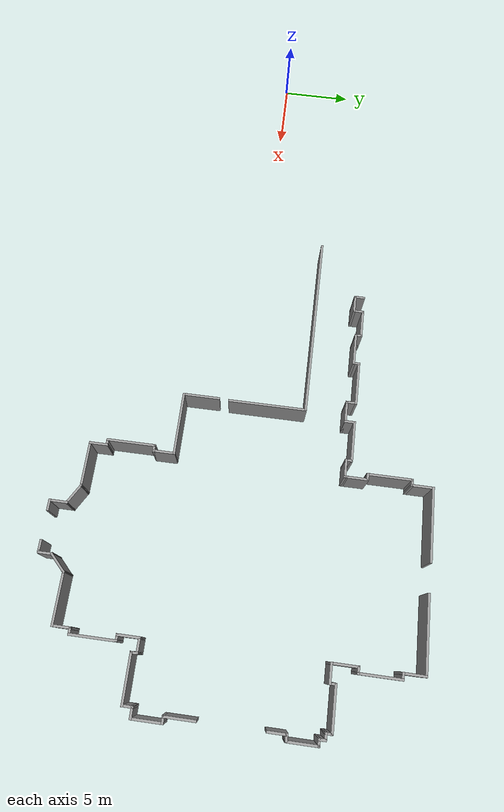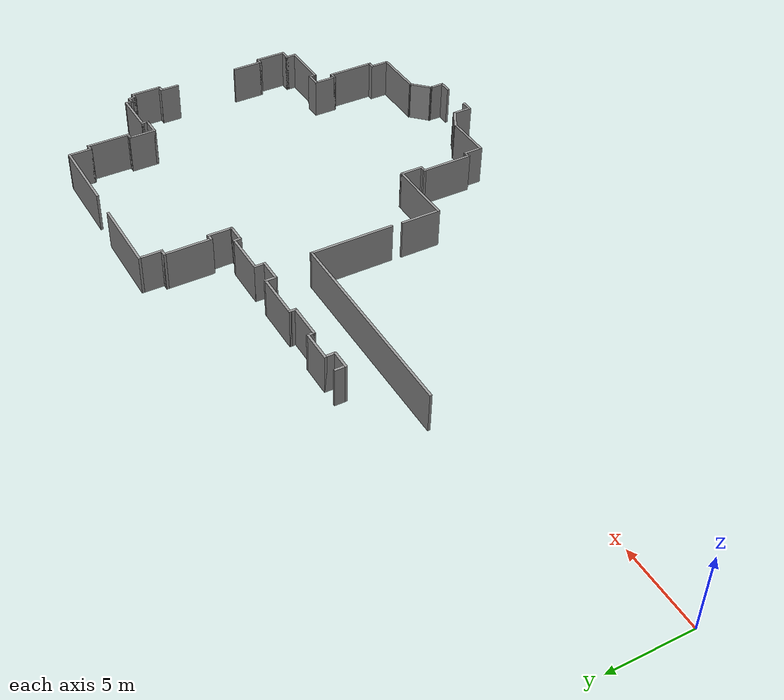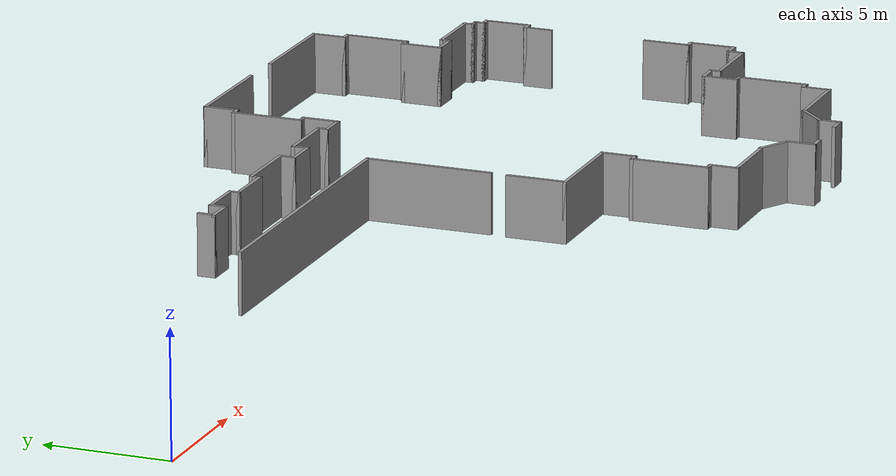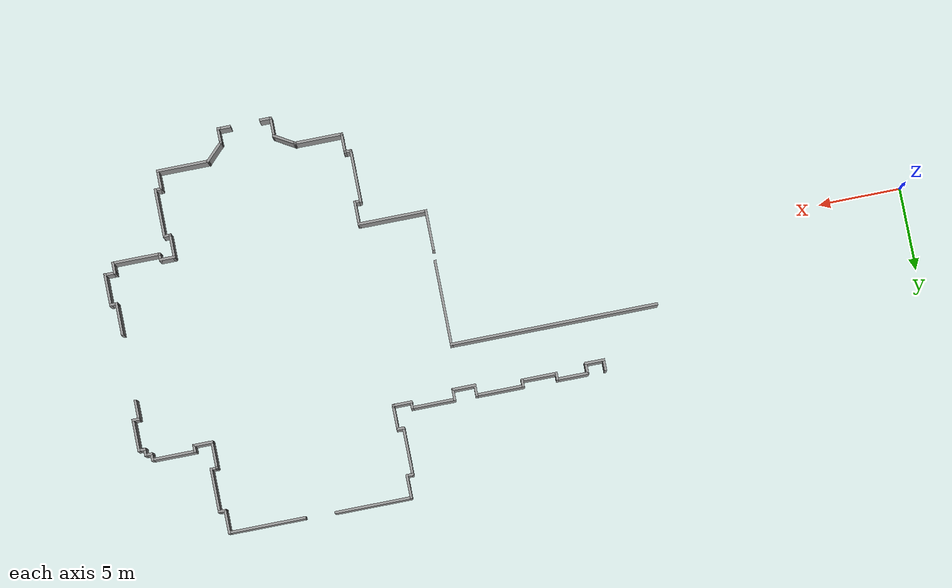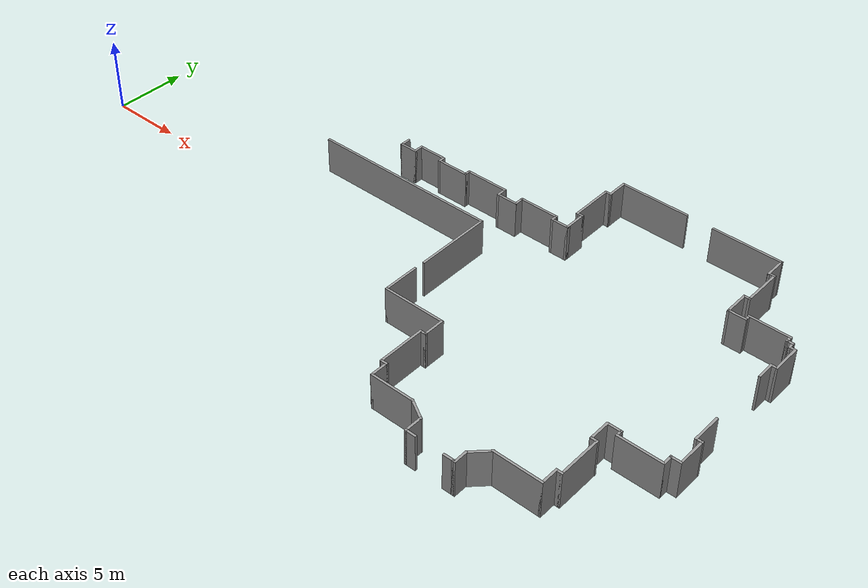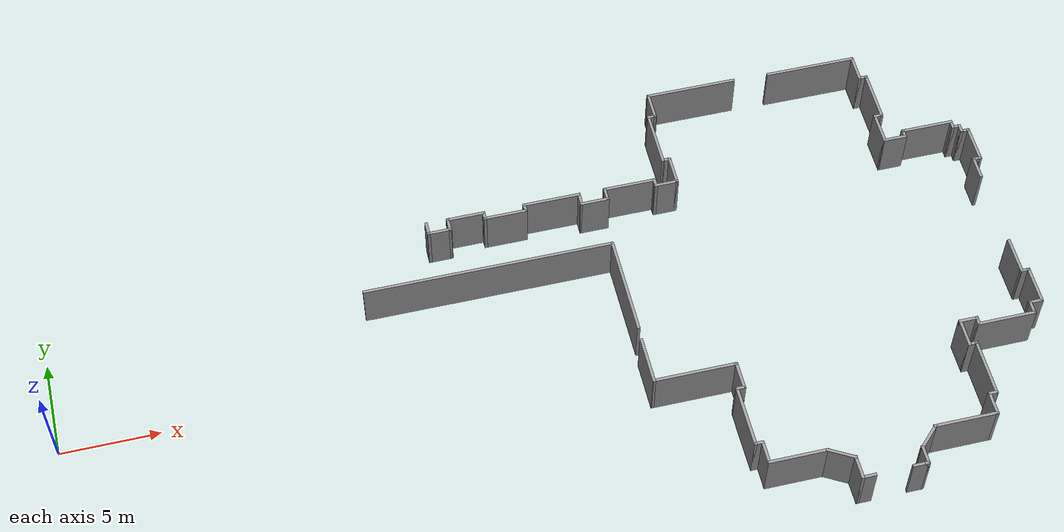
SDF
<sdf version="1.7">
 <model name="Building_1">
  <pose>-6.53713 -6.30976 0 0 -0 0</pose>
  <link name="Wall_100">
   <collision name="Wall_100_Collision">
    <geometry><box><size>3 0.15 2.5</size></box></geometry>
    <pose>0 0 1.25 0 -0 0</pose>
   </collision>
   <visual name="Wall_100_Visual">
    <pose>0 0 1.25 0 -0 0</pose>
    <geometry><box><size>3 0.15 2.5</size></box></geometry>
    <material>
     <script><uri>file://media/materials/scripts/gazebo.material</uri><name>Gazebo/Grey</name></script>
     <ambient>1 1 1 1</ambient>
    </material>
    <meta><layer>0</layer></meta>
   </visual>
   <pose>50.7832 -0.74149 0 0 -0 1.5708</pose>
  </link>
  <link name="Wall_101">
   <collision name="Wall_101_Collision">
    <geometry><box><size>0.5 0.15 2.5</size></box></geometry>
    <pose>0 0 1.25 0 -0 0</pose>
   </collision>
   <visual name="Wall_101_Visual">
    <pose>0 0 1.25 0 -0 0</pose>
    <geometry><box><size>0.5 0.15 2.5</size></box></geometry>
    <material>
     <script><uri>file://media/materials/scripts/gazebo.material</uri><name>Gazebo/Grey</name></script>
     <ambient>1 1 1 1</ambient>
    </material>
    <meta><layer>0</layer></meta>
   </visual>
   <pose>50.6082 0.68351 0 0 -0 3.14159</pose>
  </link>
  <link name="Wall_102">
   <collision name="Wall_102_Collision">
    <geometry><box><size>1.5 0.15 2.5</size></box></geometry>
    <pose>0 0 1.25 0 -0 0</pose>
   </collision>
   <visual name="Wall_102_Visual">
    <pose>0 0 1.25 0 -0 0</pose>
    <geometry><box><size>1.5 0.15 2.5</size></box></geometry>
    <material>
     <script><uri>file://media/materials/scripts/gazebo.material</uri><name>Gazebo/Grey</name></script>
     <ambient>1 1 1 1</ambient>
    </material>
    <meta><layer>0</layer></meta>
   </visual>
   <pose>50.4332 1.35851 0 0 -0 1.5708</pose>
  </link>
  <link name="Wall_103">
   <collision name="Wall_103_Collision">
    <geometry><box><size>1 0.15 2.5</size></box></geometry>
    <pose>0 0 1.25 0 -0 0</pose>
   </collision>
   <visual name="Wall_103_Visual">
    <pose>0 0 1.25 0 -0 0</pose>
    <geometry><box><size>1 0.15 2.5</size></box></geometry>
    <material>
     <script><uri>file://media/materials/scripts/gazebo.material</uri><name>Gazebo/Grey</name></script>
     <ambient>1 1 1 1</ambient>
    </material>
    <meta><layer>0</layer></meta>
   </visual>
   <pose>50.8582 2.03351 0 0 -0 0</pose>
  </link>
  <link name="Wall_104">
   <collision name="Wall_104_Collision">
    <geometry><box><size>0.5 0.15 2.5</size></box></geometry>
    <pose>0 0 1.25 0 -0 0</pose>
   </collision>
   <visual name="Wall_104_Visual">
    <pose>0 0 1.25 0 -0 0</pose>
    <geometry><box><size>0.5 0.15 2.5</size></box></geometry>
    <material>
     <script><uri>file://media/materials/scripts/gazebo.material</uri><name>Gazebo/Grey</name></script>
     <ambient>1 1 1 1</ambient>
    </material>
    <meta><layer>0</layer></meta>
   </visual>
   <pose>51.2832 1.85851 0 0 -0 -1.5708</pose>
  </link>
  <link name="Wall_105">
   <collision name="Wall_105_Collision">
    <geometry><box><size>3 0.15 2.5</size></box></geometry>
    <pose>0 0 1.25 0 -0 0</pose>
   </collision>
   <visual name="Wall_105_Visual">
    <pose>0 0 1.25 0 -0 0</pose>
    <geometry><box><size>3 0.15 2.5</size></box></geometry>
    <material>
     <script><uri>file://media/materials/scripts/gazebo.material</uri><name>Gazebo/Grey</name></script>
     <ambient>1 1 1 1</ambient>
    </material>
    <meta><layer>0</layer></meta>
   </visual>
   <pose>52.7082 1.68351 0 0 -0 0</pose>
  </link>
  <link name="Wall_106">
   <collision name="Wall_106_Collision">
    <geometry><box><size>0.75 0.15 2.5</size></box></geometry>
    <pose>0 0 1.25 0 -0 0</pose>
   </collision>
   <visual name="Wall_106_Visual">
    <pose>0 0 1.25 0 -0 0</pose>
    <geometry><box><size>0.75 0.15 2.5</size></box></geometry>
    <material>
     <script><uri>file://media/materials/scripts/gazebo.material</uri><name>Gazebo/Grey</name></script>
     <ambient>1 1 1 1</ambient>
    </material>
    <meta><layer>0</layer></meta>
   </visual>
   <pose>54.1332 1.98351 0 0 -0 1.5708</pose>
  </link>
  <link name="Wall_107">
   <collision name="Wall_107_Collision">
    <geometry><box><size>0.75 0.15 2.5</size></box></geometry>
    <pose>0 0 1.25 0 -0 0</pose>
   </collision>
   <visual name="Wall_107_Visual">
    <pose>0 0 1.25 0 -0 0</pose>
    <geometry><box><size>0.75 0.15 2.5</size></box></geometry>
    <material>
     <script><uri>file://media/materials/scripts/gazebo.material</uri><name>Gazebo/Grey</name></script>
     <ambient>1 1 1 1</ambient>
    </material>
    <meta><layer>0</layer></meta>
   </visual>
   <pose>54.4332 2.28351 0 0 -0 0</pose>
  </link>
  <link name="Wall_108">
   <collision name="Wall_108_Collision">
    <geometry><box><size>2 0.15 2.5</size></box></geometry>
    <pose>0 0 1.25 0 -0 0</pose>
   </collision>
   <visual name="Wall_108_Visual">
    <pose>0 0 1.25 0 -0 0</pose>
    <geometry><box><size>2 0.15 2.5</size></box></geometry>
    <material>
     <script><uri>file://media/materials/scripts/gazebo.material</uri><name>Gazebo/Grey</name></script>
     <ambient>1 1 1 1</ambient>
    </material>
    <meta><layer>0</layer></meta>
   </visual>
   <pose>54.7332 3.20851 0 0 -0 1.5708</pose>
  </link>
  <link name="Wall_109">
   <collision name="Wall_109_Collision">
    <geometry><box><size>0.5 0.15 2.5</size></box></geometry>
    <pose>0 0 1.25 0 -0 0</pose>
   </collision>
   <visual name="Wall_109_Visual">
    <pose>0 0 1.25 0 -0 0</pose>
    <geometry><box><size>0.5 0.15 2.5</size></box></geometry>
    <material>
     <script><uri>file://media/materials/scripts/gazebo.material</uri><name>Gazebo/Grey</name></script>
     <ambient>1 1 1 1</ambient>
    </material>
    <meta><layer>0</layer></meta>
   </visual>
   <pose>54.5582 4.13351 0 0 -0 3.14159</pose>
  </link>
  <link name="Wall_110">
   <collision name="Wall_110_Collision">
    <geometry><box><size>2 0.15 2.5</size></box></geometry>
    <pose>0 0 1.25 0 -0 0</pose>
   </collision>
   <visual name="Wall_110_Visual">
    <pose>0 0 1.25 0 -0 0</pose>
    <geometry><box><size>2 0.15 2.5</size></box></geometry>
    <material>
     <script><uri>file://media/materials/scripts/gazebo.material</uri><name>Gazebo/Grey</name></script>
     <ambient>1 1 1 1</ambient>
    </material>
    <meta><layer>0</layer></meta>
   </visual>
   <pose>54.3832 5.05851 0 0 -0 1.5708</pose>
  </link>
  <link name="Wall_112">
   <collision name="Wall_112_Collision">
    <geometry><box><size>1.25 0.15 2.5</size></box></geometry>
    <pose>0 0 1.25 0 -0 0</pose>
   </collision>
   <visual name="Wall_112_Visual">
    <pose>0 0 1.25 0 -0 0</pose>
    <geometry><box><size>1.25 0.15 2.5</size></box></geometry>
    <material>
     <script><uri>file://media/materials/scripts/gazebo.material</uri><name>Gazebo/Grey</name></script>
     <ambient>1 1 1 1</ambient>
    </material>
    <meta><layer>0</layer></meta>
   </visual>
   <pose>54.3806 10.6744 0 0 -0 1.5708</pose>
  </link>
  <link name="Wall_113">
   <collision name="Wall_113_Collision">
    <geometry><box><size>0.5 0.15 2.5</size></box></geometry>
    <pose>0 0 1.25 0 -0 0</pose>
   </collision>
   <visual name="Wall_113_Visual">
    <pose>0 0 1.25 0 -0 0</pose>
    <geometry><box><size>0.5 0.15 2.5</size></box></geometry>
    <material>
     <script><uri>file://media/materials/scripts/gazebo.material</uri><name>Gazebo/Grey</name></script>
     <ambient>1 1 1 1</ambient>
    </material>
    <meta><layer>0</layer></meta>
   </visual>
   <pose>54.5556 11.2244 0 0 -0 0</pose>
  </link>
  <link name="Wall_114">
   <collision name="Wall_114_Collision">
    <geometry><box><size>2 0.15 2.5</size></box></geometry>
    <pose>0 0 1.25 0 -0 0</pose>
   </collision>
   <visual name="Wall_114_Visual">
    <pose>0 0 1.25 0 -0 0</pose>
    <geometry><box><size>2 0.15 2.5</size></box></geometry>
    <material>
     <script><uri>file://media/materials/scripts/gazebo.material</uri><name>Gazebo/Grey</name></script>
     <ambient>1 1 1 1</ambient>
    </material>
    <meta><layer>0</layer></meta>
   </visual>
   <pose>54.7306 12.1494 0 0 -0 1.5708</pose>
  </link>
  <link name="Wall_115">
   <collision name="Wall_115_Collision">
    <geometry><box><size>0.5 0.15 2.5</size></box></geometry>
    <pose>0 0 1.25 0 -0 0</pose>
   </collision>
   <visual name="Wall_115_Visual">
    <pose>0 0 1.25 0 -0 0</pose>
    <geometry><box><size>0.5 0.15 2.5</size></box></geometry>
    <material>
     <script><uri>file://media/materials/scripts/gazebo.material</uri><name>Gazebo/Grey</name></script>
     <ambient>1 1 1 1</ambient>
    </material>
    <meta><layer>0</layer></meta>
   </visual>
   <pose>54.5556 13.0744 0 0 -0 3.14159</pose>
  </link>
  <link name="Wall_116">
   <collision name="Wall_116_Collision">
    <geometry><box><size>0.5 0.15 2.5</size></box></geometry>
    <pose>0 0 1.25 0 -0 0</pose>
   </collision>
   <visual name="Wall_116_Visual">
    <pose>0 0 1.25 0 -0 0</pose>
    <geometry><box><size>0.5 0.15 2.5</size></box></geometry>
    <material>
     <script><uri>file://media/materials/scripts/gazebo.material</uri><name>Gazebo/Grey</name></script>
     <ambient>1 1 1 1</ambient>
    </material>
    <meta><layer>0</layer></meta>
   </visual>
   <pose>54.3806 13.2494 0 0 -0 1.5708</pose>
  </link>
  <link name="Wall_117">
   <collision name="Wall_117_Collision">
    <geometry><box><size>0.5 0.15 2.5</size></box></geometry>
    <pose>0 0 1.25 0 -0 0</pose>
   </collision>
   <visual name="Wall_117_Visual">
    <pose>0 0 1.25 0 -0 0</pose>
    <geometry><box><size>0.5 0.15 2.5</size></box></geometry>
    <material>
     <script><uri>file://media/materials/scripts/gazebo.material</uri><name>Gazebo/Grey</name></script>
     <ambient>1 1 1 1</ambient>
    </material>
    <meta><layer>0</layer></meta>
   </visual>
   <pose>54.2056 13.4244 0 0 -0 3.14159</pose>
  </link>
  <link name="Wall_118">
   <collision name="Wall_118_Collision">
    <geometry><box><size>0.5 0.15 2.5</size></box></geometry>
    <pose>0 0 1.25 0 -0 0</pose>
   </collision>
   <visual name="Wall_118_Visual">
    <pose>0 0 1.25 0 -0 0</pose>
    <geometry><box><size>0.5 0.15 2.5</size></box></geometry>
    <material>
     <script><uri>file://media/materials/scripts/gazebo.material</uri><name>Gazebo/Grey</name></script>
     <ambient>1 1 1 1</ambient>
    </material>
    <meta><layer>0</layer></meta>
   </visual>
   <pose>54.0306 13.5994 0 0 -0 1.5708</pose>
  </link>
  <link name="Wall_119">
   <collision name="Wall_119_Collision">
    <geometry><box><size>2.75 0.15 2.5</size></box></geometry>
    <pose>0 0 1.25 0 -0 0</pose>
   </collision>
   <visual name="Wall_119_Visual">
    <pose>0 0 1.25 0 -0 0</pose>
    <geometry><box><size>2.75 0.15 2.5</size></box></geometry>
    <material>
     <script><uri>file://media/materials/scripts/gazebo.material</uri><name>Gazebo/Grey</name></script>
     <ambient>1 1 1 1</ambient>
    </material>
    <meta><layer>0</layer></meta>
   </visual>
   <pose>52.7306 13.7744 0 0 -0 3.14159</pose>
  </link>
  <link name="Wall_120">
   <collision name="Wall_120_Collision">
    <geometry><box><size>0.5 0.15 2.5</size></box></geometry>
    <pose>0 0 1.25 0 -0 0</pose>
   </collision>
   <visual name="Wall_120_Visual">
    <pose>0 0 1.25 0 -0 0</pose>
    <geometry><box><size>0.5 0.15 2.5</size></box></geometry>
    <material>
     <script><uri>file://media/materials/scripts/gazebo.material</uri><name>Gazebo/Grey</name></script>
     <ambient>1 1 1 1</ambient>
    </material>
    <meta><layer>0</layer></meta>
   </visual>
   <pose>51.4306 13.5994 0 0 -0 -1.5708</pose>
  </link>
  <link name="Wall_121">
   <collision name="Wall_121_Collision">
    <geometry><box><size>1.25 0.15 2.5</size></box></geometry>
    <pose>0 0 1.25 0 -0 0</pose>
   </collision>
   <visual name="Wall_121_Visual">
    <pose>0 0 1.25 0 -0 0</pose>
    <geometry><box><size>1.25 0.15 2.5</size></box></geometry>
    <material>
     <script><uri>file://media/materials/scripts/gazebo.material</uri><name>Gazebo/Grey</name></script>
     <ambient>1 1 1 1</ambient>
    </material>
    <meta><layer>0</layer></meta>
   </visual>
   <pose>50.8806 13.4244 0 0 -0 3.14159</pose>
  </link>
  <link name="Wall_122">
   <collision name="Wall_122_Collision">
    <geometry><box><size>1.75 0.15 2.5</size></box></geometry>
    <pose>0 0 1.25 0 -0 0</pose>
   </collision>
   <visual name="Wall_122_Visual">
    <pose>0 0 1.25 0 -0 0</pose>
    <geometry><box><size>1.75 0.15 2.5</size></box></geometry>
    <material>
     <script><uri>file://media/materials/scripts/gazebo.material</uri><name>Gazebo/Grey</name></script>
     <ambient>1 1 1 1</ambient>
    </material>
    <meta><layer>0</layer></meta>
   </visual>
   <pose>50.3306 14.2244 0 0 -0 1.5708</pose>
  </link>
  <link name="Wall_123">
   <collision name="Wall_123_Collision">
    <geometry><box><size>0.5 0.15 2.5</size></box></geometry>
    <pose>0 0 1.25 0 -0 0</pose>
   </collision>
   <visual name="Wall_123_Visual">
    <pose>0 0 1.25 0 -0 0</pose>
    <geometry><box><size>0.5 0.15 2.5</size></box></geometry>
    <material>
     <script><uri>file://media/materials/scripts/gazebo.material</uri><name>Gazebo/Grey</name></script>
     <ambient>1 1 1 1</ambient>
    </material>
    <meta><layer>0</layer></meta>
   </visual>
   <pose>50.5056 15.0244 0 0 -0 0</pose>
  </link>
  <link name="Wall_124">
   <collision name="Wall_124_Collision">
    <geometry><box><size>2.75 0.15 2.5</size></box></geometry>
    <pose>0 0 1.25 0 -0 0</pose>
   </collision>
   <visual name="Wall_124_Visual">
    <pose>0 0 1.25 0 -0 0</pose>
    <geometry><box><size>2.75 0.15 2.5</size></box></geometry>
    <material>
     <script><uri>file://media/materials/scripts/gazebo.material</uri><name>Gazebo/Grey</name></script>
     <ambient>1 1 1 1</ambient>
    </material>
    <meta><layer>0</layer></meta>
   </visual>
   <pose>50.6806 16.3244 0 0 -0 1.5708</pose>
  </link>
  <link name="Wall_125">
   <collision name="Wall_125_Collision">
    <geometry><box><size>0.5 0.15 2.5</size></box></geometry>
    <pose>0 0 1.25 0 -0 0</pose>
   </collision>
   <visual name="Wall_125_Visual">
    <pose>0 0 1.25 0 -0 0</pose>
    <geometry><box><size>0.5 0.15 2.5</size></box></geometry>
    <material>
     <script><uri>file://media/materials/scripts/gazebo.material</uri><name>Gazebo/Grey</name></script>
     <ambient>1 1 1 1</ambient>
    </material>
    <meta><layer>0</layer></meta>
   </visual>
   <pose>50.5056 17.6244 0 0 -0 3.14159</pose>
  </link>
  <link name="Wall_126">
   <collision name="Wall_126_Collision">
    <geometry><box><size>1.5 0.15 2.5</size></box></geometry>
    <pose>0 0 1.25 0 -0 0</pose>
   </collision>
   <visual name="Wall_126_Visual">
    <pose>0 0 1.25 0 -0 0</pose>
    <geometry><box><size>1.5 0.15 2.5</size></box></geometry>
    <material>
     <script><uri>file://media/materials/scripts/gazebo.material</uri><name>Gazebo/Grey</name></script>
     <ambient>1 1 1 1</ambient>
    </material>
    <meta><layer>0</layer></meta>
   </visual>
   <pose>50.3306 18.2994 0 0 -0 1.5708</pose>
  </link>
  <link name="Wall_127">
   <collision name="Wall_127_Collision">
    <geometry><box><size>4.75 0.15 2.5</size></box></geometry>
    <pose>0 0 1.25 0 -0 0</pose>
   </collision>
   <visual name="Wall_127_Visual">
    <pose>0 0 1.25 0 -0 0</pose>
    <geometry><box><size>4.75 0.15 2.5</size></box></geometry>
    <material>
     <script><uri>file://media/materials/scripts/gazebo.material</uri><name>Gazebo/Grey</name></script>
     <ambient>1 1 1 1</ambient>
    </material>
    <meta><layer>0</layer></meta>
   </visual>
   <pose>48.0306 18.9744 0 0 -0 3.14159</pose>
  </link>
  <link name="Wall_129">
   <collision name="Wall_129_Collision">
    <geometry><box><size>4.75 0.15 2.5</size></box></geometry>
    <pose>0 0 1.25 0 -0 0</pose>
   </collision>
   <visual name="Wall_129_Visual">
    <pose>0 0 1.25 0 -0 0</pose>
    <geometry><box><size>4.75 0.15 2.5</size></box></geometry>
    <material>
     <script><uri>file://media/materials/scripts/gazebo.material</uri><name>Gazebo/Grey</name></script>
     <ambient>1 1 1 1</ambient>
    </material>
    <meta><layer>0</layer></meta>
   </visual>
   <pose>41.5139 19.0249 0 0 -0 3.14159</pose>
  </link>
  <link name="Wall_130">
   <collision name="Wall_130_Collision">
    <geometry><box><size>1.5 0.15 2.5</size></box></geometry>
    <pose>0 0 1.25 0 -0 0</pose>
   </collision>
   <visual name="Wall_130_Visual">
    <pose>0 0 1.25 0 -0 0</pose>
    <geometry><box><size>1.5 0.15 2.5</size></box></geometry>
    <material>
     <script><uri>file://media/materials/scripts/gazebo.material</uri><name>Gazebo/Grey</name></script>
     <ambient>1 1 1 1</ambient>
    </material>
    <meta><layer>0</layer></meta>
   </visual>
   <pose>39.2139 18.3499 0 0 -0 -1.5708</pose>
  </link>
  <link name="Wall_131">
   <collision name="Wall_131_Collision">
    <geometry><box><size>0.5 0.15 2.5</size></box></geometry>
    <pose>0 0 1.25 0 -0 0</pose>
   </collision>
   <visual name="Wall_131_Visual">
    <pose>0 0 1.25 0 -0 0</pose>
    <geometry><box><size>0.5 0.15 2.5</size></box></geometry>
    <material>
     <script><uri>file://media/materials/scripts/gazebo.material</uri><name>Gazebo/Grey</name></script>
     <ambient>1 1 1 1</ambient>
    </material>
    <meta><layer>0</layer></meta>
   </visual>
   <pose>39.0389 17.6749 0 0 -0 3.14159</pose>
  </link>
  <link name="Wall_132">
   <collision name="Wall_132_Collision">
    <geometry><box><size>3 0.15 2.5</size></box></geometry>
    <pose>0 0 1.25 0 -0 0</pose>
   </collision>
   <visual name="Wall_132_Visual">
    <pose>0 0 1.25 0 -0 0</pose>
    <geometry><box><size>3 0.15 2.5</size></box></geometry>
    <material>
     <script><uri>file://media/materials/scripts/gazebo.material</uri><name>Gazebo/Grey</name></script>
     <ambient>1 1 1 1</ambient>
    </material>
    <meta><layer>0</layer></meta>
   </visual>
   <pose>38.8639 16.2499 0 0 -0 -1.5708</pose>
  </link>
  <link name="Wall_135">
   <collision name="Wall_135_Collision">
    <geometry><box><size>0.5 0.15 2.5</size></box></geometry>
    <pose>0 0 1.25 0 -0 0</pose>
   </collision>
   <visual name="Wall_135_Visual">
    <pose>0 0 1.25 0 -0 0</pose>
    <geometry><box><size>0.5 0.15 2.5</size></box></geometry>
    <material>
     <script><uri>file://media/materials/scripts/gazebo.material</uri><name>Gazebo/Grey</name></script>
     <ambient>1 1 1 1</ambient>
    </material>
    <meta><layer>0</layer></meta>
   </visual>
   <pose>39.0389 14.8249 0 0 -0 0</pose>
  </link>
  <link name="Wall_136">
   <collision name="Wall_136_Collision">
    <geometry><box><size>1.5 0.15 2.5</size></box></geometry>
    <pose>0 0 1.25 0 -0 0</pose>
   </collision>
   <visual name="Wall_136_Visual">
    <pose>0 0 1.25 0 -0 0</pose>
    <geometry><box><size>1.5 0.15 2.5</size></box></geometry>
    <material>
     <script><uri>file://media/materials/scripts/gazebo.material</uri><name>Gazebo/Grey</name></script>
     <ambient>1 1 1 1</ambient>
    </material>
    <meta><layer>0</layer></meta>
   </visual>
   <pose>39.2139 14.1499 0 0 -0 -1.5708</pose>
  </link>
  <link name="Wall_137">
   <collision name="Wall_137_Collision">
    <geometry><box><size>0.25 0.15 2.5</size></box></geometry>
    <pose>0 0 1.25 0 -0 0</pose>
   </collision>
   <visual name="Wall_137_Visual">
    <pose>0 0 1.25 0 -0 0</pose>
    <geometry><box><size>0.25 0.15 2.5</size></box></geometry>
    <material>
     <script><uri>file://media/materials/scripts/gazebo.material</uri><name>Gazebo/Grey</name></script>
     <ambient>1 1 1 1</ambient>
    </material>
    <meta><layer>0</layer></meta>
   </visual>
   <pose>39.2139 13.4249 0 0 -0 -1.5708</pose>
  </link>
  <link name="Wall_138">
   <collision name="Wall_138_Collision">
    <geometry><box><size>1.25 0.15 2.5</size></box></geometry>
    <pose>0 0 1.25 0 -0 0</pose>
   </collision>
   <visual name="Wall_138_Visual">
    <pose>0 0 1.25 0 -0 0</pose>
    <geometry><box><size>1.25 0.15 2.5</size></box></geometry>
    <material>
     <script><uri>file://media/materials/scripts/gazebo.material</uri><name>Gazebo/Grey</name></script>
     <ambient>1 1 1 1</ambient>
    </material>
    <meta><layer>0</layer></meta>
   </visual>
   <pose>38.6639 13.3749 0 0 -0 3.14159</pose>
  </link>
  <link name="Wall_139">
   <collision name="Wall_139_Collision">
    <geometry><box><size>0.5 0.15 2.5</size></box></geometry>
    <pose>0 0 1.25 0 -0 0</pose>
   </collision>
   <visual name="Wall_139_Visual">
    <pose>0 0 1.25 0 -0 0</pose>
    <geometry><box><size>0.5 0.15 2.5</size></box></geometry>
    <material>
     <script><uri>file://media/materials/scripts/gazebo.material</uri><name>Gazebo/Grey</name></script>
     <ambient>1 1 1 1</ambient>
    </material>
    <meta><layer>0</layer></meta>
   </visual>
   <pose>38.1139 13.5499 0 0 -0 1.5708</pose>
  </link>
  <link name="Wall_140">
   <collision name="Wall_140_Collision">
    <geometry><box><size>2.75 0.15 2.5</size></box></geometry>
    <pose>0 0 1.25 0 -0 0</pose>
   </collision>
   <visual name="Wall_140_Visual">
    <pose>0 0 1.25 0 -0 0</pose>
    <geometry><box><size>2.75 0.15 2.5</size></box></geometry>
    <material>
     <script><uri>file://media/materials/scripts/gazebo.material</uri><name>Gazebo/Grey</name></script>
     <ambient>1 1 1 1</ambient>
    </material>
    <meta><layer>0</layer></meta>
   </visual>
   <pose>36.8139 13.7249 0 0 -0 3.14159</pose>
  </link>
  <link name="Wall_141">
   <collision name="Wall_141_Collision">
    <geometry><box><size>0.75 0.15 2.5</size></box></geometry>
    <pose>0 0 1.25 0 -0 0</pose>
   </collision>
   <visual name="Wall_141_Visual">
    <pose>0 0 1.25 0 -0 0</pose>
    <geometry><box><size>0.75 0.15 2.5</size></box></geometry>
    <material>
     <script><uri>file://media/materials/scripts/gazebo.material</uri><name>Gazebo/Grey</name></script>
     <ambient>1 1 1 1</ambient>
    </material>
    <meta><layer>0</layer></meta>
   </visual>
   <pose>35.5139 13.4249 0 0 -0 -1.5708</pose>
  </link>
  <link name="Wall_142">
   <collision name="Wall_142_Collision">
    <geometry><box><size>1.5 0.15 2.5</size></box></geometry>
    <pose>0 0 1.25 0 -0 0</pose>
   </collision>
   <visual name="Wall_142_Visual">
    <pose>0 0 1.25 0 -0 0</pose>
    <geometry><box><size>1.5 0.15 2.5</size></box></geometry>
    <material>
     <script><uri>file://media/materials/scripts/gazebo.material</uri><name>Gazebo/Grey</name></script>
     <ambient>1 1 1 1</ambient>
    </material>
    <meta><layer>0</layer></meta>
   </visual>
   <pose>34.8389 13.1249 0 0 -0 3.14159</pose>
  </link>
  <link name="Wall_143">
   <collision name="Wall_143_Collision">
    <geometry><box><size>0.75 0.15 2.5</size></box></geometry>
    <pose>0 0 1.25 0 -0 0</pose>
   </collision>
   <visual name="Wall_143_Visual">
    <pose>0 0 1.25 0 -0 0</pose>
    <geometry><box><size>0.75 0.15 2.5</size></box></geometry>
    <material>
     <script><uri>file://media/materials/scripts/gazebo.material</uri><name>Gazebo/Grey</name></script>
     <ambient>1 1 1 1</ambient>
    </material>
    <meta><layer>0</layer></meta>
   </visual>
   <pose>34.1639 13.4249 0 0 -0 1.5708</pose>
  </link>
  <link name="Wall_144">
   <collision name="Wall_144_Collision">
    <geometry><box><size>3 0.15 2.5</size></box></geometry>
    <pose>0 0 1.25 0 -0 0</pose>
   </collision>
   <visual name="Wall_144_Visual">
    <pose>0 0 1.25 0 -0 0</pose>
    <geometry><box><size>3 0.15 2.5</size></box></geometry>
    <material>
     <script><uri>file://media/materials/scripts/gazebo.material</uri><name>Gazebo/Grey</name></script>
     <ambient>1 1 1 1</ambient>
    </material>
    <meta><layer>0</layer></meta>
   </visual>
   <pose>32.7389 13.7249 0 0 -0 3.14159</pose>
  </link>
  <link name="Wall_145">
   <collision name="Wall_145_Collision">
    <geometry><box><size>0.5 0.15 2.5</size></box></geometry>
    <pose>0 0 1.25 0 -0 0</pose>
   </collision>
   <visual name="Wall_145_Visual">
    <pose>0 0 1.25 0 -0 0</pose>
    <geometry><box><size>0.5 0.15 2.5</size></box></geometry>
    <material>
     <script><uri>file://media/materials/scripts/gazebo.material</uri><name>Gazebo/Grey</name></script>
     <ambient>1 1 1 1</ambient>
    </material>
    <meta><layer>0</layer></meta>
   </visual>
   <pose>31.3139 13.5499 0 0 -0 -1.5708</pose>
  </link>
  <link name="Wall_146">
   <collision name="Wall_146_Collision">
    <geometry><box><size>2.25 0.15 2.5</size></box></geometry>
    <pose>0 0 1.25 0 -0 0</pose>
   </collision>
   <visual name="Wall_146_Visual">
    <pose>0 0 1.25 0 -0 0</pose>
    <geometry><box><size>2.25 0.15 2.5</size></box></geometry>
    <material>
     <script><uri>file://media/materials/scripts/gazebo.material</uri><name>Gazebo/Grey</name></script>
     <ambient>1 1 1 1</ambient>
    </material>
    <meta><layer>0</layer></meta>
   </visual>
   <pose>30.2639 13.3749 0 0 -0 3.14159</pose>
  </link>
  <link name="Wall_147">
   <collision name="Wall_147_Collision">
    <geometry><box><size>0.5 0.15 2.5</size></box></geometry>
    <pose>0 0 1.25 0 -0 0</pose>
   </collision>
   <visual name="Wall_147_Visual">
    <pose>0 0 1.25 0 -0 0</pose>
    <geometry><box><size>0.5 0.15 2.5</size></box></geometry>
    <material>
     <script><uri>file://media/materials/scripts/gazebo.material</uri><name>Gazebo/Grey</name></script>
     <ambient>1 1 1 1</ambient>
    </material>
    <meta><layer>0</layer></meta>
   </visual>
   <pose>29.2139 13.5499 0 0 -0 1.5708</pose>
  </link>
  <link name="Wall_148">
   <collision name="Wall_148_Collision">
    <geometry><box><size>2 0.15 2.5</size></box></geometry>
    <pose>0 0 1.25 0 -0 0</pose>
   </collision>
   <visual name="Wall_148_Visual">
    <pose>0 0 1.25 0 -0 0</pose>
    <geometry><box><size>2 0.15 2.5</size></box></geometry>
    <material>
     <script><uri>file://media/materials/scripts/gazebo.material</uri><name>Gazebo/Grey</name></script>
     <ambient>1 1 1 1</ambient>
    </material>
    <meta><layer>0</layer></meta>
   </visual>
   <pose>28.2889 13.7249 0 0 -0 3.14159</pose>
  </link>
  <link name="Wall_149">
   <collision name="Wall_149_Collision">
    <geometry><box><size>0.75 0.15 2.5</size></box></geometry>
    <pose>0 0 1.25 0 -0 0</pose>
   </collision>
   <visual name="Wall_149_Visual">
    <pose>0 0 1.25 0 -0 0</pose>
    <geometry><box><size>0.75 0.15 2.5</size></box></geometry>
    <material>
     <script><uri>file://media/materials/scripts/gazebo.material</uri><name>Gazebo/Grey</name></script>
     <ambient>1 1 1 1</ambient>
    </material>
    <meta><layer>0</layer></meta>
   </visual>
   <pose>27.3639 13.4249 0 0 -0 -1.5708</pose>
  </link>
  <link name="Wall_150">
   <collision name="Wall_150_Collision">
    <geometry><box><size>1.25 0.15 2.5</size></box></geometry>
    <pose>0 0 1.25 0 -0 0</pose>
   </collision>
   <visual name="Wall_150_Visual">
    <pose>0 0 1.25 0 -0 0</pose>
    <geometry><box><size>1.25 0.15 2.5</size></box></geometry>
    <material>
     <script><uri>file://media/materials/scripts/gazebo.material</uri><name>Gazebo/Grey</name></script>
     <ambient>1 1 1 1</ambient>
    </material>
    <meta><layer>0</layer></meta>
   </visual>
   <pose>26.8139 13.1249 0 0 -0 3.14159</pose>
  </link>
  <link name="Wall_151">
   <collision name="Wall_151_Collision">
    <geometry><box><size>0.75 0.15 2.5</size></box></geometry>
    <pose>0 0 1.25 0 -0 0</pose>
   </collision>
   <visual name="Wall_151_Visual">
    <pose>0 0 1.25 0 -0 0</pose>
    <geometry><box><size>0.75 0.15 2.5</size></box></geometry>
    <material>
     <script><uri>file://media/materials/scripts/gazebo.material</uri><name>Gazebo/Grey</name></script>
     <ambient>1 1 1 1</ambient>
    </material>
    <meta><layer>0</layer></meta>
   </visual>
   <pose>26.2639 13.4249 0 0 -0 1.5708</pose>
  </link>
  <link name="Wall_75">
   <collision name="Wall_75_Collision">
    <geometry><box><size>12.75 0.15 2.5</size></box></geometry>
    <pose>0 0 1.25 0 -0 0</pose>
   </collision>
   <visual name="Wall_75_Visual">
    <pose>0 0 1.25 0 -0 0</pose>
    <geometry><box><size>12.75 0.15 2.5</size></box></geometry>
    <material>
     <script><uri>file://media/materials/scripts/gazebo.material</uri><name>Gazebo/Grey</name></script>
     <ambient>1 1 1 1</ambient>
    </material>
    <meta><layer>0</layer></meta>
   </visual>
   <pose>28.7715 10.4297 0 0 -0 0</pose>
  </link>
  <link name="Wall_76">
   <collision name="Wall_76_Collision">
    <geometry><box><size>5.25 0.15 2.5</size></box></geometry>
    <pose>0 0 1.25 0 -0 0</pose>
   </collision>
   <visual name="Wall_76_Visual">
    <pose>0 0 1.25 0 -0 0</pose>
    <geometry><box><size>5.25 0.15 2.5</size></box></geometry>
    <material>
     <script><uri>file://media/materials/scripts/gazebo.material</uri><name>Gazebo/Grey</name></script>
     <ambient>1 1 1 1</ambient>
    </material>
    <meta><layer>0</layer></meta>
   </visual>
   <pose>35.0715 7.87971 0 0 -0 -1.5708</pose>
  </link>
  <link name="Wall_78">
   <collision name="Wall_78_Collision">
    <geometry><box><size>2.5 0.15 2.5</size></box></geometry>
    <pose>0 0 1.25 0 -0 0</pose>
   </collision>
   <visual name="Wall_78_Visual">
    <pose>0 0 1.25 0 -0 0</pose>
    <geometry><box><size>2.5 0.15 2.5</size></box></geometry>
    <material>
     <script><uri>file://media/materials/scripts/gazebo.material</uri><name>Gazebo/Grey</name></script>
     <ambient>1 1 1 1</ambient>
    </material>
    <meta><layer>0</layer></meta>
   </visual>
   <pose>35.0268 3.40267 0 0 -0 -1.5708</pose>
  </link>
  <link name="Wall_79">
   <collision name="Wall_79_Collision">
    <geometry><box><size>4.25 0.15 2.5</size></box></geometry>
    <pose>0 0 1.25 0 -0 0</pose>
   </collision>
   <visual name="Wall_79_Visual">
    <pose>0 0 1.25 0 -0 0</pose>
    <geometry><box><size>4.25 0.15 2.5</size></box></geometry>
    <material>
     <script><uri>file://media/materials/scripts/gazebo.material</uri><name>Gazebo/Grey</name></script>
     <ambient>1 1 1 1</ambient>
    </material>
    <meta><layer>0</layer></meta>
   </visual>
   <pose>37.0768 2.22767 0 0 -0 0</pose>
  </link>
  <link name="Wall_80">
   <collision name="Wall_80_Collision">
    <geometry><box><size>1.5 0.15 2.5</size></box></geometry>
    <pose>0 0 1.25 0 -0 0</pose>
   </collision>
   <visual name="Wall_80_Visual">
    <pose>0 0 1.25 0 -0 0</pose>
    <geometry><box><size>1.5 0.15 2.5</size></box></geometry>
    <material>
     <script><uri>file://media/materials/scripts/gazebo.material</uri><name>Gazebo/Grey</name></script>
     <ambient>1 1 1 1</ambient>
    </material>
    <meta><layer>0</layer></meta>
   </visual>
   <pose>39.1268 1.55267 0 0 -0 -1.5708</pose>
  </link>
  <link name="Wall_84">
   <collision name="Wall_84_Collision">
    <geometry><box><size>0.5 0.15 2.5</size></box></geometry>
    <pose>0 0 1.25 0 -0 0</pose>
   </collision>
   <visual name="Wall_84_Visual">
    <pose>0 0 1.25 0 -0 0</pose>
    <geometry><box><size>0.5 0.15 2.5</size></box></geometry>
    <material>
     <script><uri>file://media/materials/scripts/gazebo.material</uri><name>Gazebo/Grey</name></script>
     <ambient>1 1 1 1</ambient>
    </material>
    <meta><layer>0</layer></meta>
   </visual>
   <pose>38.9518 0.877669 0 0 -0 3.14159</pose>
  </link>
  <link name="Wall_85">
   <collision name="Wall_85_Collision">
    <geometry><box><size>3.25 0.15 2.5</size></box></geometry>
    <pose>0 0 1.25 0 -0 0</pose>
   </collision>
   <visual name="Wall_85_Visual">
    <pose>0 0 1.25 0 -0 0</pose>
    <geometry><box><size>3.25 0.15 2.5</size></box></geometry>
    <material>
     <script><uri>file://media/materials/scripts/gazebo.material</uri><name>Gazebo/Grey</name></script>
     <ambient>1 1 1 1</ambient>
    </material>
    <meta><layer>0</layer></meta>
   </visual>
   <pose>38.7768 -0.67233 0 0 -0 -1.5708</pose>
  </link>
  <link name="Wall_86">
   <collision name="Wall_86_Collision">
    <geometry><box><size>0.5 0.15 2.5</size></box></geometry>
    <pose>0 0 1.25 0 -0 0</pose>
   </collision>
   <visual name="Wall_86_Visual">
    <pose>0 0 1.25 0 -0 0</pose>
    <geometry><box><size>0.5 0.15 2.5</size></box></geometry>
    <material>
     <script><uri>file://media/materials/scripts/gazebo.material</uri><name>Gazebo/Grey</name></script>
     <ambient>1 1 1 1</ambient>
    </material>
    <meta><layer>0</layer></meta>
   </visual>
   <pose>38.9518 -2.22233 0 0 -0 0</pose>
  </link>
  <link name="Wall_87">
   <collision name="Wall_87_Collision">
    <geometry><box><size>1.25 0.15 2.5</size></box></geometry>
    <pose>0 0 1.25 0 -0 0</pose>
   </collision>
   <visual name="Wall_87_Visual">
    <pose>0 0 1.25 0 -0 0</pose>
    <geometry><box><size>1.25 0.15 2.5</size></box></geometry>
    <material>
     <script><uri>file://media/materials/scripts/gazebo.material</uri><name>Gazebo/Grey</name></script>
     <ambient>1 1 1 1</ambient>
    </material>
    <meta><layer>0</layer></meta>
   </visual>
   <pose>39.1268 -2.77233 0 0 -0 -1.5708</pose>
  </link>
  <link name="Wall_88">
   <collision name="Wall_88_Collision">
    <geometry><box><size>3 0.15 2.5</size></box></geometry>
    <pose>0 0 1.25 0 -0 0</pose>
   </collision>
   <visual name="Wall_88_Visual">
    <pose>0 0 1.25 0 -0 0</pose>
    <geometry><box><size>3 0.15 2.5</size></box></geometry>
    <material>
     <script><uri>file://media/materials/scripts/gazebo.material</uri><name>Gazebo/Grey</name></script>
     <ambient>1 1 1 1</ambient>
    </material>
    <meta><layer>0</layer></meta>
   </visual>
   <pose>40.5518 -3.32233 0 0 -0 0</pose>
  </link>
  <link name="Wall_89">
   <collision name="Wall_89_Collision">
    <geometry><box><size>1.5 0.15 2.5</size></box></geometry>
    <pose>0 0 1.25 0 -0 0</pose>
   </collision>
   <visual name="Wall_89_Visual">
    <pose>0 0 1.25 0 -0 0</pose>
    <geometry><box><size>1.5 0.15 2.5</size></box></geometry>
    <material>
     <script><uri>file://media/materials/scripts/gazebo.material</uri><name>Gazebo/Grey</name></script>
     <ambient>1 1 1 1</ambient>
    </material>
    <meta><layer>0</layer></meta>
   </visual>
   <pose>42.5614 -3.65983 0 0 -0 -0.523599</pose>
  </link>
  <link name="Wall_90">
   <collision name="Wall_90_Collision">
    <geometry><box><size>1.25 0.15 2.5</size></box></geometry>
    <pose>0 0 1.25 0 -0 0</pose>
   </collision>
   <visual name="Wall_90_Visual">
    <pose>0 0 1.25 0 -0 0</pose>
    <geometry><box><size>1.25 0.15 2.5</size></box></geometry>
    <material>
     <script><uri>file://media/materials/scripts/gazebo.material</uri><name>Gazebo/Grey</name></script>
     <ambient>1 1 1 1</ambient>
    </material>
    <meta><layer>0</layer></meta>
   </visual>
   <pose>43.1459 -4.54733 0 0 -0 -1.5708</pose>
  </link>
  <link name="Wall_91">
   <collision name="Wall_91_Collision">
    <geometry><box><size>0.75 0.15 2.5</size></box></geometry>
    <pose>0 0 1.25 0 -0 0</pose>
   </collision>
   <visual name="Wall_91_Visual">
    <pose>0 0 1.25 0 -0 0</pose>
    <geometry><box><size>0.75 0.15 2.5</size></box></geometry>
    <material>
     <script><uri>file://media/materials/scripts/gazebo.material</uri><name>Gazebo/Grey</name></script>
     <ambient>1 1 1 1</ambient>
    </material>
    <meta><layer>0</layer></meta>
   </visual>
   <pose>43.4459 -5.09733 0 0 -0 0</pose>
  </link>
  <link name="Wall_93">
   <collision name="Wall_93_Collision">
    <geometry><box><size>0.75 0.15 2.5</size></box></geometry>
    <pose>0 0 1.25 0 -0 0</pose>
   </collision>
   <visual name="Wall_93_Visual">
    <pose>0 0 1.25 0 -0 0</pose>
    <geometry><box><size>0.75 0.15 2.5</size></box></geometry>
    <material>
     <script><uri>file://media/materials/scripts/gazebo.material</uri><name>Gazebo/Grey</name></script>
     <ambient>1 1 1 1</ambient>
    </material>
    <meta><layer>0</layer></meta>
   </visual>
   <pose>45.9786 -5.07109 0 0 -0 0</pose>
  </link>
  <link name="Wall_94">
   <collision name="Wall_94_Collision">
    <geometry><box><size>0.25 0.15 2.5</size></box></geometry>
    <pose>0 0 1.25 0 -0 0</pose>
   </collision>
   <visual name="Wall_94_Visual">
    <pose>0 0 1.25 0 -0 0</pose>
    <geometry><box><size>0.25 0.15 2.5</size></box></geometry>
    <material>
     <script><uri>file://media/materials/scripts/gazebo.material</uri><name>Gazebo/Grey</name></script>
     <ambient>1 1 1 1</ambient>
    </material>
    <meta><layer>0</layer></meta>
   </visual>
   <pose>46.3286 -5.07109 0 0 -0 0</pose>
  </link>
  <link name="Wall_95">
   <collision name="Wall_95_Collision">
    <geometry><box><size>1 0.15 2.5</size></box></geometry>
    <pose>0 0 1.25 0 -0 0</pose>
   </collision>
   <visual name="Wall_95_Visual">
    <pose>0 0 1.25 0 -0 0</pose>
    <geometry><box><size>1 0.15 2.5</size></box></geometry>
    <material>
     <script><uri>file://media/materials/scripts/gazebo.material</uri><name>Gazebo/Grey</name></script>
     <ambient>1 1 1 1</ambient>
    </material>
    <meta><layer>0</layer></meta>
   </visual>
   <pose>46.3786 -4.64609 0 0 -0 1.5708</pose>
  </link>
  <link name="Wall_96">
   <collision name="Wall_96_Collision">
    <geometry><box><size>1.5 0.15 2.5</size></box></geometry>
    <pose>0 0 1.25 0 -0 0</pose>
   </collision>
   <visual name="Wall_96_Visual">
    <pose>0 0 1.25 0 -0 0</pose>
    <geometry><box><size>1.5 0.15 2.5</size></box></geometry>
    <material>
     <script><uri>file://media/materials/scripts/gazebo.material</uri><name>Gazebo/Grey</name></script>
     <ambient>1 1 1 1</ambient>
    </material>
    <meta><layer>0</layer></meta>
   </visual>
   <pose>46.8559 -3.74379 0 0 -0 0.785398</pose>
  </link>
  <link name="Wall_97">
   <collision name="Wall_97_Collision">
    <geometry><box><size>3.25 0.15 2.5</size></box></geometry>
    <pose>0 0 1.25 0 -0 0</pose>
   </collision>
   <visual name="Wall_97_Visual">
    <pose>0 0 1.25 0 -0 0</pose>
    <geometry><box><size>3.25 0.15 2.5</size></box></geometry>
    <material>
     <script><uri>file://media/materials/scripts/gazebo.material</uri><name>Gazebo/Grey</name></script>
     <ambient>1 1 1 1</ambient>
    </material>
    <meta><layer>0</layer></meta>
   </visual>
   <pose>48.8832 -3.26649 0 0 -0 0</pose>
  </link>
  <link name="Wall_98">
   <collision name="Wall_98_Collision">
    <geometry><box><size>1.25 0.15 2.5</size></box></geometry>
    <pose>0 0 1.25 0 -0 0</pose>
   </collision>
   <visual name="Wall_98_Visual">
    <pose>0 0 1.25 0 -0 0</pose>
    <geometry><box><size>1.25 0.15 2.5</size></box></geometry>
    <material>
     <script><uri>file://media/materials/scripts/gazebo.material</uri><name>Gazebo/Grey</name></script>
     <ambient>1 1 1 1</ambient>
    </material>
    <meta><layer>0</layer></meta>
   </visual>
   <pose>50.4332 -2.71649 0 0 -0 1.5708</pose>
  </link>
  <link name="Wall_99">
   <collision name="Wall_99_Collision">
    <geometry><box><size>0.5 0.15 2.5</size></box></geometry>
    <pose>0 0 1.25 0 -0 0</pose>
   </collision>
   <visual name="Wall_99_Visual">
    <pose>0 0 1.25 0 -0 0</pose>
    <geometry><box><size>0.5 0.15 2.5</size></box></geometry>
    <material>
     <script><uri>file://media/materials/scripts/gazebo.material</uri><name>Gazebo/Grey</name></script>
     <ambient>1 1 1 1</ambient>
    </material>
    <meta><layer>0</layer></meta>
   </visual>
   <pose>50.6082 -2.16649 0 0 -0 0</pose>
  </link>
  <static>1</static>
 </model>
</sdf>
